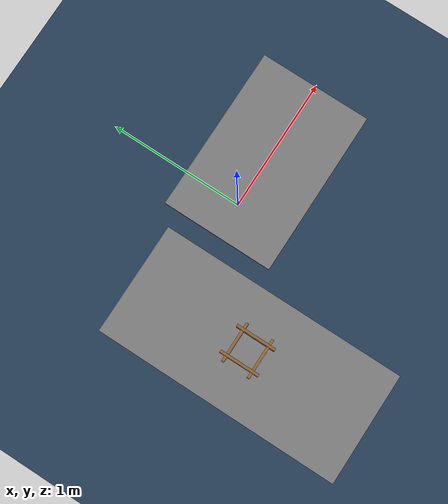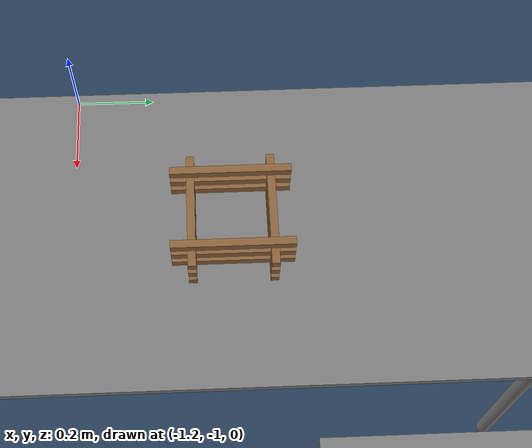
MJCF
<mujoco model="tableworld">
    <compiler eulerseq="XYZ"/>
    <statistic center="0.3 0 0.4" extent="0.8"/>

    <visual>
        <headlight diffuse="0.6 0.6 0.6" ambient="0.1 0.1 0.1"/>
        <rgba haze="0.15 0.25 0.35 1"/>
        <global azimuth="120" elevation="-20" offwidth="1280" offheight="720"/>
    </visual>

    <asset>
        <texture type="skybox" builtin="gradient" rgb1="0.3 0.5 0.7" rgb2="0 0 0" width="512" height="3072"/>
        <texture type="2d" name="groundplane" builtin="checker" mark="edge" rgb1="0.2 0.3 0.4" rgb2="0.1 0.2 0.3" markrgb="0.8 0.8 0.8" width="300" height="300"/>
        <material name="groundplane" texture="groundplane" texuniform="true" texrepeat="5 5" reflectance="0.2"/>

        <texture name="wood" file="wood.png" type="2d"/>
        <material name="wood_material" texture="wood" texrepeat="50 50" texuniform="true" rgba="0.8 0.8 0.8 1"/>

    </asset>

    <worldbody>
        <light pos="0 0 1.5" dir="0 0 -1" directional="true"/>

        <geom name="floor" pos="0.0 0.0 -0.8" size="0 0 0.05" type="plane" material="groundplane"/>

<!--         Tables and Walls-->
        <body name="table1" pos="0.365 0 -0.005">
            <geom name="table1_top" type="box" size="0.625 0.42 0.01" pos="0 0 0"/>
            <geom name="table1_leg_1" type="cylinder" size=".02 .4" pos=".5 -.33 -.4" euler="0 0 0"/>
            <geom name="table1_leg_2" type="cylinder" size=".02 .4" pos=".5 .33 -.4" euler="0 0 0"/>
            <geom name="table1_leg_3" type="cylinder" size=".02 .4" pos="-.5 -.33 -.4" euler="0 0 0"/>
            <geom name="table1_leg_4" type="cylinder" size=".02 .4" pos="-.5 .33 -.4" euler="0 0 0"/>
        </body>

        <body name="table2" pos="-0.805 -0.615 -0.005">
            <geom name="table2_top" type="box" size="0.42 0.925 0.01" pos="0 0 0"/>
            <geom name="table2_leg_1" type="cylinder" size=".02 .4" pos=".33 -.8 -.4" euler="0 0 0"/>
            <geom name="table2_leg_2" type="cylinder" size=".02 .4" pos=".33 .8 -.4" euler="0 0 0"/>
            <geom name="table2_leg_3" type="cylinder" size=".02 .4" pos="-.33 -.8 -.4" euler="0 0 0"/>
            <geom name="table2_leg_4" type="cylinder" size=".02 .4" pos="-.33 .8 -.4" euler="0 0 0"/>
        </body>

<!--        &lt;!&ndash; Blocks representing 'X' &ndash;&gt;-->

<!-- Niveau 1 -->
<body name="block0" pos="-0.8 -0.7 0.03" quat="0.707 0 0 0.707">
    <freejoint name="block0_fj"/>
    <geom type="box" size="0.01 0.15 0.01" material="wood_material" density="1500"/>
</body>

<body name="block1" pos="-0.8 -0.5 0.03" quat="0.707 0 0 0.707">
    <freejoint name="block1_fj"/>
    <geom type="box" size="0.01 0.15 0.01" material="wood_material" density="1500"/>
</body>

<!-- Niveau 2 -->
<body name="block2" pos="-0.7 -0.6 0.05" quat="0. 0.707 0 0.707">
    <freejoint name="block2_fj"/>
    <geom type="box" size="0.01 0.15 0.01" material="wood_material" density="1500"/>
</body>

<body name="block3" pos="-0.9 -0.6 0.05" quat="0. 0.707 0 0.707">
    <freejoint name="block3_fj"/>
    <geom type="box" size="0.01 0.15 0.01" material="wood_material" density="1500"/>
</body>

<!-- Niveau 3 -->
<body name="block4" pos="-0.8 -0.7 0.07" quat="0.707 0 0 0.707">
    <freejoint name="block4_fj"/>
    <geom type="box" size="0.01 0.15 0.01" material="wood_material" density="1500"/>
</body>

<body name="block5" pos="-0.8 -0.5 0.07" quat="0.707 0 0 0.707">
    <freejoint name="block5_fj"/>
    <geom type="box" size="0.01 0.15 0.01" material="wood_material" density="1500"/>
</body>

<!-- Niveau 4 -->
<body name="block6" pos="-0.7 -0.6 0.09" quat="0. 0.707 0 0.707">
    <freejoint name="block6_fj"/>
    <geom type="box" size="0.01 0.15 0.01" material="wood_material" density="1500"/>
</body>

<body name="block7" pos="-0.9 -0.6 0.09" quat="0. 0.707 0 0.707">
    <freejoint name="block7_fj"/>
    <geom type="box" size="0.01 0.15 0.01" material="wood_material" density="1500"/>
</body>

<!-- Niveau 5 -->
<body name="block8" pos="-0.8 -0.7 0.11" quat="0.707 0 0 0.707">
    <freejoint name="block8_fj"/>
    <geom type="box" size="0.01 0.15 0.01" material="wood_material" density="1500"/>
</body>

<body name="block9" pos="-0.8 -0.5 0.11" quat="0.707 0 0 0.707">
    <freejoint name="block9_fj"/>
    <geom type="box" size="0.01 0.15 0.01" material="wood_material" density="1500"/>
</body>

<!-- Niveau 6 -->
<body name="block10" pos="-0.7 -0.6 0.13" quat="0. 0.707 0 0.707">
    <freejoint name="block10_fj"/>
    <geom type="box" size="0.01 0.15 0.01" material="wood_material" density="1500"/>
</body>

<body name="block11" pos="-0.9 -0.6 0.13" quat="0. 0.707 0 0.707">
    <freejoint name="block11_fj"/>
    <geom type="box" size="0.01 0.15 0.01" material="wood_material" density="1500"/>
</body>

        <camera name="top-right" pos="1.3 -1.5 1.1" euler="1 0 1.1"/>

        <camera name="robot-cam" pos="1.3 -1.5 1.1" euler="1 0 1.1" fovy="60"/>
    </worldbody>
</mujoco>
